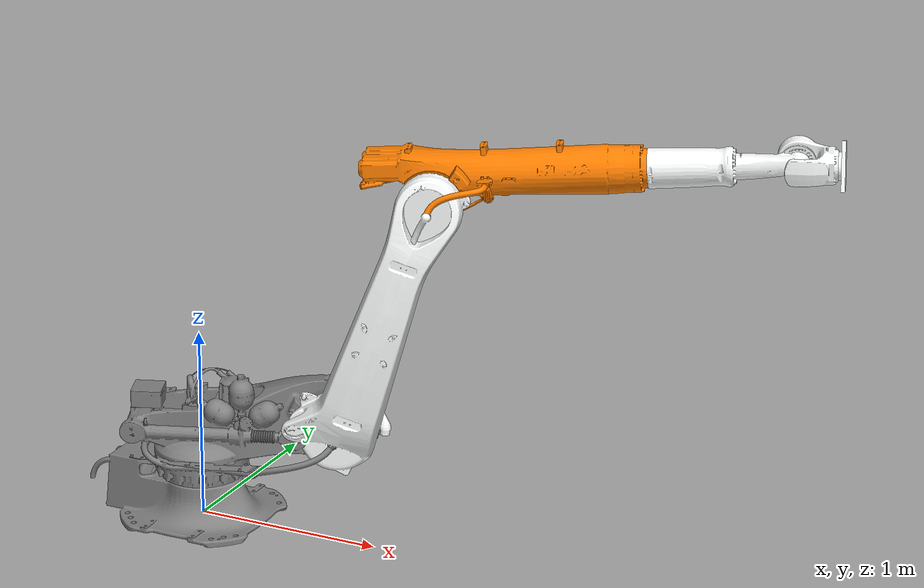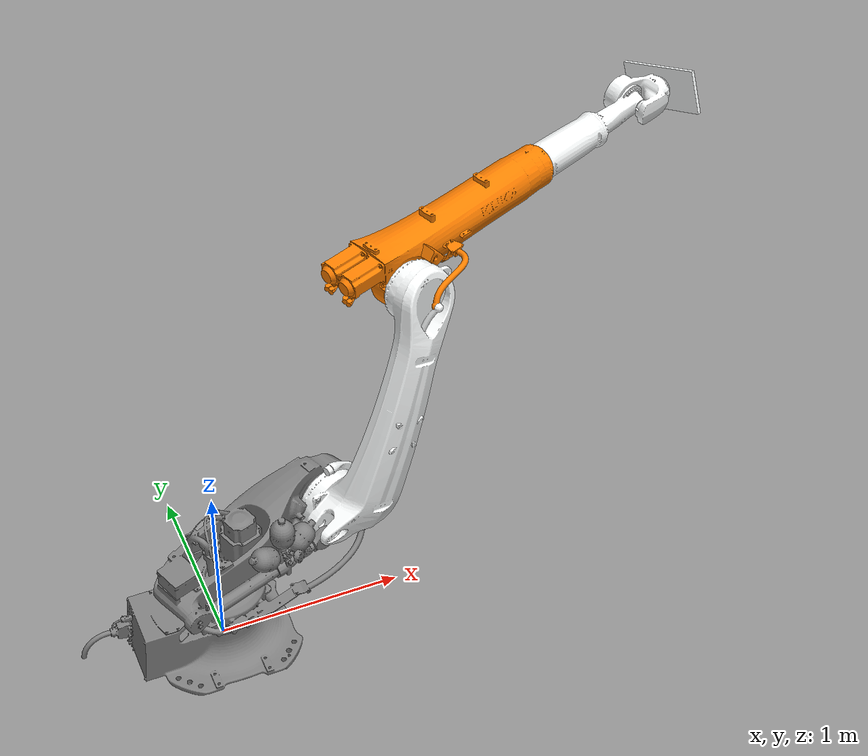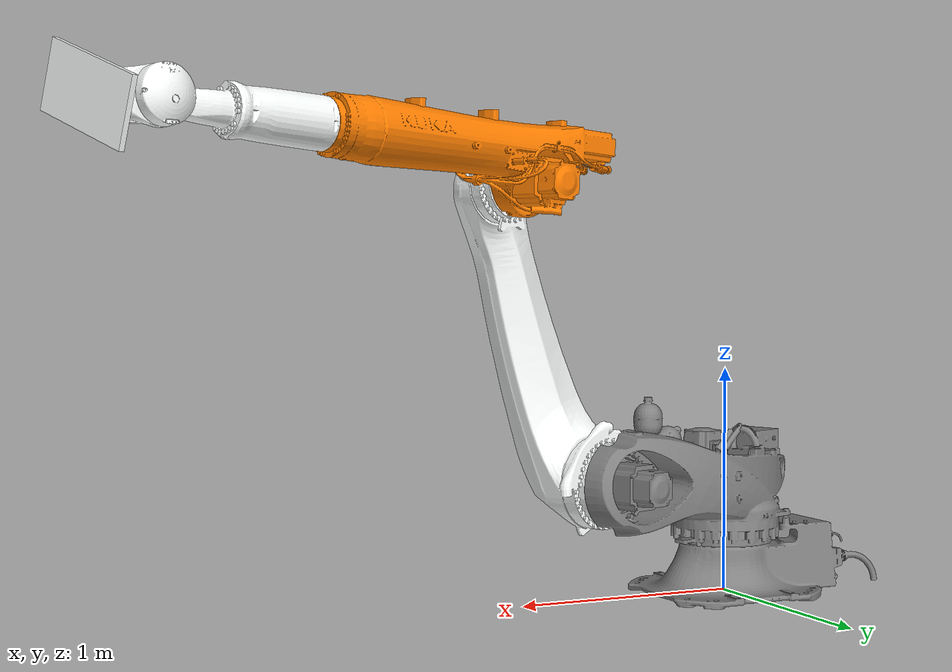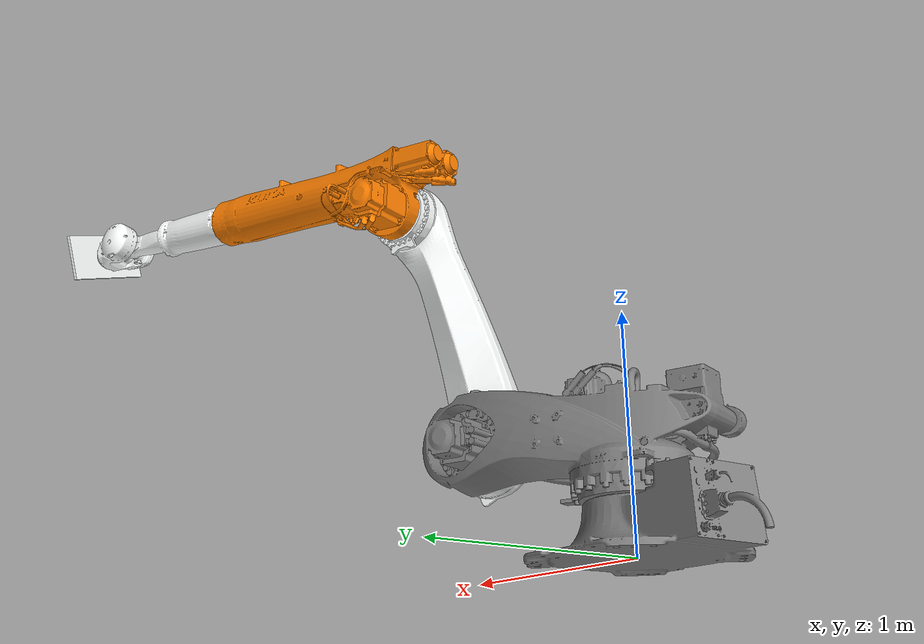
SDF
<sdf version='1.12'>
  <model name='robot_urdf'>
    <joint name='jnt_world_to_base_link' type='fixed'>
      <pose relative_to='__model__'>0 0 0 -1.5708 0 0</pose>
      <parent>world</parent>
      <child>base_link</child>
    </joint>
    <link name='base_link'>
      <pose relative_to='jnt_world_to_base_link'>0 0 0 0 0 0</pose>
      <inertial>
        <pose>-0.11981 0.00095474999999999998 0.10543 0 0 0</pose>
        <mass>69.418999999999997</mass>
        <inertia>
          <ixx>1.5959000000000001</ixx>
          <ixy>0.0085722000000000003</ixy>
          <ixz>0.36667</ixz>
          <iyy>3.5013999999999998</iyy>
          <iyz>-0.0021186999999999998</iyz>
          <izz>4.2720000000000002</izz>
        </inertia>
      </inertial>
      <collision name='base_link_collision'>
        <pose>0 0 0 0 0 0</pose>
        <geometry>
          <mesh>
            <scale>1 1 1</scale>
            <uri>/home/mskrishna/ros2_ws/src/robot_urdf/meshes/base_link.STL</uri>
          </mesh>
        </geometry>
      </collision>
      <visual name='base_link_visual'>
        <pose>0 0 0 0 0 0</pose>
        <geometry>
          <mesh>
            <scale>1 1 1</scale>
            <uri>/home/mskrishna/ros2_ws/src/robot_urdf/meshes/base_link.STL</uri>
          </mesh>
        </geometry>
        <material>
          <diffuse>0.5 0.5 0.5 1</diffuse>
          <ambient>0.5 0.5 0.5 1</ambient>
        </material>
      </visual>
    </link>
    <joint name='jnt_Base_to_Ax1' type='revolute'>
      <pose relative_to='base_link'>0 -0.21559 0 1.5708 -0.34738000000000008 0</pose>
      <parent>base_link</parent>
      <child>Ax1</child>
      <axis>
        <xyz>0 0 1</xyz>
        <limit>
          <lower>-1.0471975499999999</lower>
          <upper>1.0471975499999999</upper>
          <effort>0</effort>
          <velocity>1</velocity>
        </limit>
        <dynamics>
          <spring_reference>0</spring_reference>
          <spring_stiffness>0</spring_stiffness>
        </dynamics>
      </axis>
    </joint>
    <link name='Ax1'>
      <pose relative_to='jnt_Base_to_Ax1'>0 0 0 0 0 0</pose>
      <inertial>
        <pose>0.21321999999999999 0.0074862000000000001 0.26077 0 0 0</pose>
        <mass>112.66</mass>
        <inertia>
          <ixx>2.9338000000000002</ixx>
          <ixy>-0.80384</ixy>
          <ixz>-1.3413999999999999</ixz>
          <iyy>9.9259000000000004</iyy>
          <iyz>-0.19044</iyz>
          <izz>9.4934999999999992</izz>
        </inertia>
      </inertial>
      <collision name='Ax1_collision'>
        <pose>0 0 0 0 0 0</pose>
        <geometry>
          <mesh>
            <scale>1 1 1</scale>
            <uri>/home/mskrishna/ros2_ws/src/robot_urdf/meshes/Ax1.STL</uri>
          </mesh>
        </geometry>
      </collision>
      <visual name='Ax1_visual'>
        <pose>0 0 0 0 0 0</pose>
        <geometry>
          <mesh>
            <scale>1 1 1</scale>
            <uri>/home/mskrishna/ros2_ws/src/robot_urdf/meshes/Ax1.STL</uri>
          </mesh>
        </geometry>
        <material>
          <diffuse>0.5 0.5 0.5 1</diffuse>
          <ambient>0.5 0.5 0.5 1</ambient>
        </material>
      </visual>
    </link>
    <joint name='jnt_Ax1_to_Ax2' type='revolute'>
      <pose relative_to='Ax1'>0.72999999999999998 0 0.32440999999999998 0 0.36697000000000002 0</pose>
      <parent>Ax1</parent>
      <child>Ax2</child>
      <axis>
        <xyz>0 1 0</xyz>
        <limit>
          <lower>-1.0471975499999999</lower>
          <upper>1.0471975499999999</upper>
          <effort>0</effort>
          <velocity>1</velocity>
        </limit>
        <dynamics>
          <spring_reference>0</spring_reference>
          <spring_stiffness>0</spring_stiffness>
        </dynamics>
      </axis>
    </joint>
    <link name='Ax2'>
      <pose relative_to='jnt_Ax1_to_Ax2'>0 0 0 0 0 0</pose>
      <inertial>
        <pose>-0.13683265685927901 0.014407876770065201 0.32155414214809003 0 0 0</pose>
        <mass>276.998100922925</mass>
        <inertia>
          <ixx>318.85270980183299</ixx>
          <ixy>0.77656097222215104</ixy>
          <ixz>-176.545924815262</ixz>
          <iyy>440.99238490242601</iyy>
          <iyz>2.8342665170395098</iyz>
          <izz>130.06696817011999</izz>
        </inertia>
      </inertial>
      <collision name='Ax2_collision'>
        <pose>0 0 0 0 0 0</pose>
        <geometry>
          <mesh>
            <scale>1 1 1</scale>
            <uri>/home/mskrishna/ros2_ws/src/robot_urdf/meshes/Ax2.STL</uri>
          </mesh>
        </geometry>
      </collision>
      <visual name='Ax2_visual'>
        <pose>0 0 0 0 0 0</pose>
        <geometry>
          <mesh>
            <scale>1 1 1</scale>
            <uri>/home/mskrishna/ros2_ws/src/robot_urdf/meshes/Ax2.STL</uri>
          </mesh>
        </geometry>
        <material>
          <diffuse>0.990196109 1 1 1</diffuse>
          <ambient>0.990196109 1 1 1</ambient>
        </material>
      </visual>
    </link>
    <joint name='jnt_Ax2_to_Ax3' type='revolute'>
      <pose relative_to='Ax2'>0 0 1.3500000000000001 0 -0.42829 0</pose>
      <parent>Ax2</parent>
      <child>Ax3</child>
      <axis>
        <xyz>0 1 0</xyz>
        <limit>
          <lower>-1.0471975499999999</lower>
          <upper>1.0471975499999999</upper>
          <effort>0</effort>
          <velocity>1</velocity>
        </limit>
        <dynamics>
          <spring_reference>0</spring_reference>
          <spring_stiffness>0</spring_stiffness>
        </dynamics>
      </axis>
    </joint>
    <link name='Ax3'>
      <pose relative_to='jnt_Ax2_to_Ax3'>0 0 0 0 0 0</pose>
      <inertial>
        <pose>0.372143478673027 -4.1711812169942201e-05 0.10653343886316401 0 0 0</pose>
        <mass>67.863334197799801</mass>
        <inertia>
          <ixx>0.58105284887163799</ixx>
          <ixy>-0.13715563051977001</ixy>
          <ixz>-0.0109016166060049</ixz>
          <iyy>6.8581695890918102</iyy>
          <iyz>-0.0271578725085325</iyz>
          <izz>6.8975290466507699</izz>
        </inertia>
      </inertial>
      <collision name='Ax3_collision'>
        <pose>0 0 0 0 0 0</pose>
        <geometry>
          <mesh>
            <scale>1 1 1</scale>
            <uri>/home/mskrishna/ros2_ws/src/robot_urdf/meshes/Ax3.STL</uri>
          </mesh>
        </geometry>
      </collision>
      <visual name='Ax3_visual'>
        <pose>0 0 0 0 0 0</pose>
        <geometry>
          <mesh>
            <scale>1 1 1</scale>
            <uri>/home/mskrishna/ros2_ws/src/robot_urdf/meshes/Ax3.STL</uri>
          </mesh>
        </geometry>
        <material>
          <diffuse>1 0.5 0 1</diffuse>
          <ambient>1 0.5 0 1</ambient>
        </material>
      </visual>
    </link>
    <joint name='jnt_Ax3_to_Ax4' type='revolute'>
      <pose relative_to='Ax3'>0.9909 0 0.115 0.083358000000000002 0 0</pose>
      <parent>Ax3</parent>
      <child>Ax4</child>
      <axis>
        <xyz>1 0 0</xyz>
        <limit>
          <lower>-1.0471975499999999</lower>
          <upper>1.0471975499999999</upper>
          <effort>0</effort>
          <velocity>1</velocity>
        </limit>
        <dynamics>
          <spring_reference>0</spring_reference>
          <spring_stiffness>0</spring_stiffness>
        </dynamics>
      </axis>
    </joint>
    <link name='Ax4'>
      <pose relative_to='jnt_Ax3_to_Ax4'>0 0 0 0 0 0</pose>
      <inertial>
        <pose>0.39285638854580601 0.0013204215724741399 -4.5570917350801199e-07 0 0 0</pose>
        <mass>17.110300735854299</mass>
        <inertia>
          <ixx>0.070570513713624106</ixx>
          <ixy>-0.010191314944453</ixy>
          <ixz>8.1414374661513308e-06</ixz>
          <iyy>0.79870382020642305</iyy>
          <iyz>-7.86396144529522e-07</iyz>
          <izz>0.79809304007173498</izz>
        </inertia>
      </inertial>
      <collision name='Ax4_collision'>
        <pose>0 0 0 0 0 0</pose>
        <geometry>
          <mesh>
            <scale>1 1 1</scale>
            <uri>/home/mskrishna/ros2_ws/src/robot_urdf/meshes/Ax4.STL</uri>
          </mesh>
        </geometry>
      </collision>
      <visual name='Ax4_visual'>
        <pose>0 0 0 0 0 0</pose>
        <geometry>
          <mesh>
            <scale>1 1 1</scale>
            <uri>/home/mskrishna/ros2_ws/src/robot_urdf/meshes/Ax4.STL</uri>
          </mesh>
        </geometry>
        <material>
          <diffuse>0.990196109 1 1 1</diffuse>
          <ambient>0.990196109 1 1 1</ambient>
        </material>
      </visual>
    </link>
    <joint name='jnt_Ax4_to_Ax5' type='revolute'>
      <pose relative_to='Ax4'>0.82909999999999995 0 0 0 0.043548000000000003 0</pose>
      <parent>Ax4</parent>
      <child>Ax5</child>
      <axis>
        <xyz>0 1 0</xyz>
        <limit>
          <lower>-1.0471975499999999</lower>
          <upper>1.0471975499999999</upper>
          <effort>0</effort>
          <velocity>1</velocity>
        </limit>
        <dynamics>
          <spring_reference>0</spring_reference>
          <spring_stiffness>0</spring_stiffness>
        </dynamics>
      </axis>
    </joint>
    <link name='Ax5'>
      <pose relative_to='jnt_Ax4_to_Ax5'>0 0 0 0 0 0</pose>
      <inertial>
        <pose>0.051767116658476997 0.033827140647982597 -4.43843200792493e-05 0 0 0</pose>
        <mass>6.8302113337800199</mass>
        <inertia>
          <ixx>0.0611665262361527</ixx>
          <ixy>0.014990152627517701</ixy>
          <ixz>1.8949489722405499e-05</ixz>
          <iyy>0.054041031435700999</iyy>
          <iyz>3.52407908043246e-05</iyz>
          <izz>0.085874618734860006</izz>
        </inertia>
      </inertial>
      <collision name='Ax5_collision'>
        <pose>0 0 0 0 0 0</pose>
        <geometry>
          <mesh>
            <scale>1 1 1</scale>
            <uri>/home/mskrishna/ros2_ws/src/robot_urdf/meshes/Ax5.STL</uri>
          </mesh>
        </geometry>
      </collision>
      <visual name='Ax5_visual'>
        <pose>0 0 0 0 0 0</pose>
        <geometry>
          <mesh>
            <scale>1 1 1</scale>
            <uri>/home/mskrishna/ros2_ws/src/robot_urdf/meshes/Ax5.STL</uri>
          </mesh>
        </geometry>
        <material>
          <diffuse>0.990196109 1 1 1</diffuse>
          <ambient>0.990196109 1 1 1</ambient>
        </material>
      </visual>
    </link>
    <joint name='jnt_Ax5_to_Ax6' type='revolute'>
      <pose relative_to='Ax5'>0.1178 0 0 0.051820999999999985 0 0</pose>
      <parent>Ax5</parent>
      <child>Ax6</child>
      <axis>
        <xyz>1 0 0</xyz>
        <limit>
          <lower>-1.0471975499999999</lower>
          <upper>1.0471975499999999</upper>
          <effort>0</effort>
          <velocity>1</velocity>
        </limit>
        <dynamics>
          <spring_reference>0</spring_reference>
          <spring_stiffness>0</spring_stiffness>
        </dynamics>
      </axis>
    </joint>
    <link name='Ax6'>
      <pose relative_to='jnt_Ax5_to_Ax6'>0 0 0 0 0 0</pose>
      <inertial>
        <pose>0.10116108720486949 -1.4400899133656471e-06 8.7899878657093376e-06 0 0 0</pose>
        <mass>3.1110331523193349</mass>
        <inertia>
          <ixx>0.066509151148981246</ixx>
          <ixy>-3.5349522715423531e-08</ixy>
          <ixz>4.7879178456856348e-07</ixz>
          <iyy>0.021867018229571249</iyy>
          <iyz>0.015390909185967149</iyz>
          <izz>0.045913226231310382</izz>
        </inertia>
      </inertial>
      <collision name='Ax6_collision'>
        <pose>0 0 0 0 0 0</pose>
        <geometry>
          <mesh>
            <scale>1 1 1</scale>
            <uri>/home/mskrishna/ros2_ws/src/robot_urdf/meshes/Ax6.STL</uri>
          </mesh>
        </geometry>
      </collision>
      <collision name='Ax6_fixed_joint_lump__Tool_collision_1'>
        <pose>0 0.01 0 -1.5707999999999995 1.1170000000000004 -1.5707999999999995</pose>
        <geometry>
          <mesh>
            <scale>1 1 1</scale>
            <uri>/home/mskrishna/ros2_ws/src/robot_urdf/meshes/Tool.STL</uri>
          </mesh>
        </geometry>
      </collision>
      <visual name='Ax6_visual'>
        <pose>0 0 0 0 0 0</pose>
        <geometry>
          <mesh>
            <scale>1 1 1</scale>
            <uri>/home/mskrishna/ros2_ws/src/robot_urdf/meshes/Ax6.STL</uri>
          </mesh>
        </geometry>
        <material>
          <diffuse>0.990196109 1 1 1</diffuse>
          <ambient>0.990196109 1 1 1</ambient>
        </material>
      </visual>
      <visual name='Ax6_fixed_joint_lump__Tool_visual_1'>
        <pose>0 0.01 0 -1.5707999999999995 1.1170000000000004 -1.5707999999999995</pose>
        <geometry>
          <mesh>
            <scale>1 1 1</scale>
            <uri>/home/mskrishna/ros2_ws/src/robot_urdf/meshes/Tool.STL</uri>
          </mesh>
        </geometry>
        <material>
          <diffuse>0.990199983 1 1 1</diffuse>
          <ambient>0.990199983 1 1 1</ambient>
        </material>
      </visual>
    </link>
    <frame name='FixJnt_Ax6_to_Tool' attached_to='Ax6'>
      <pose>0 0.01 0 -1.5707999999999989 1.1170000000000011 -1.5707999999999998</pose>
    </frame>
    <frame name='Tool' attached_to='FixJnt_Ax6_to_Tool'>
      <pose>0 0 0 0 0 0</pose>
    </frame>
  </model>
</sdf>
